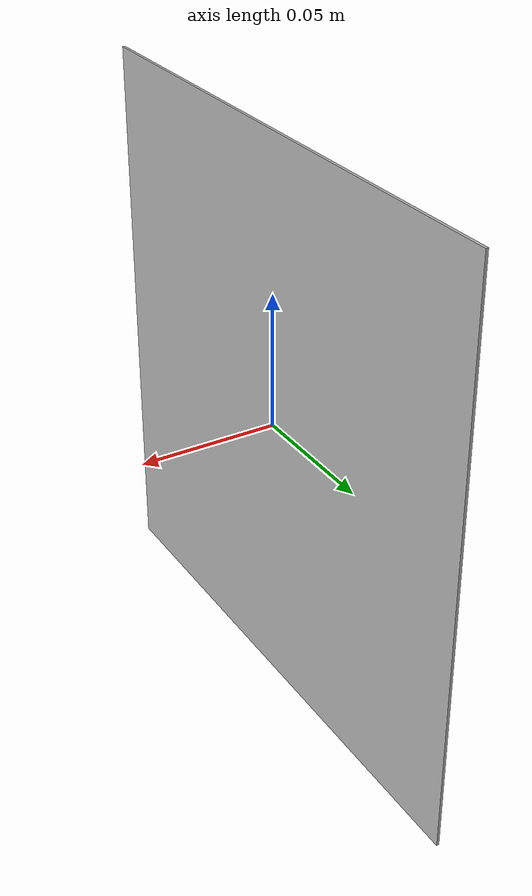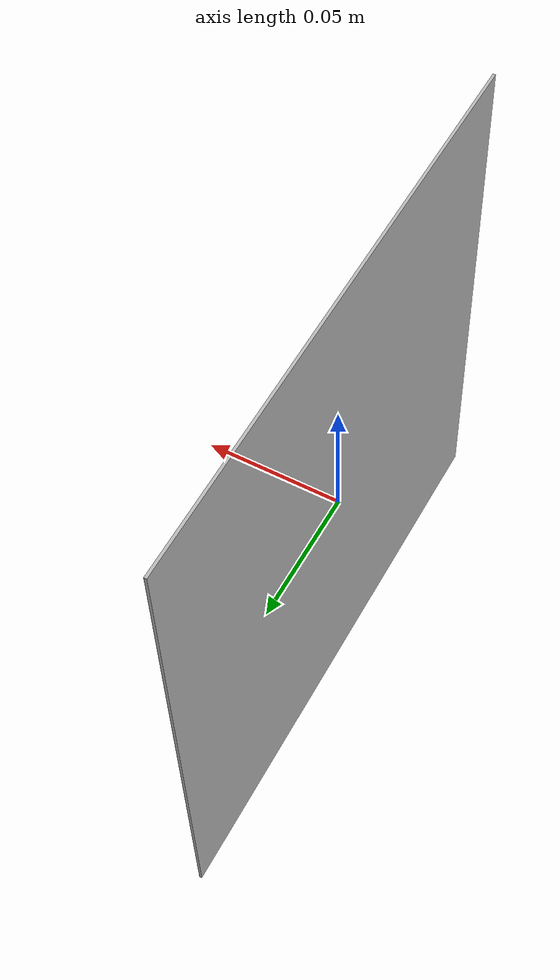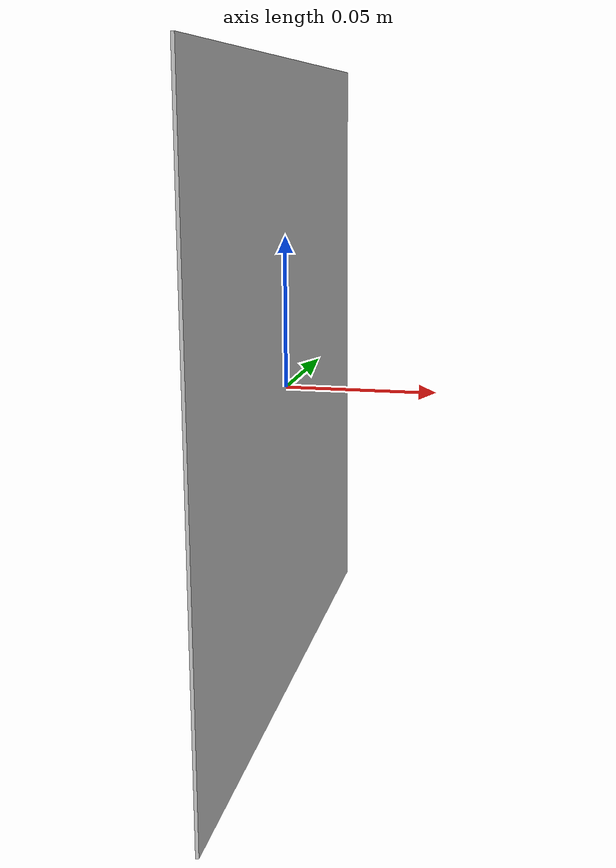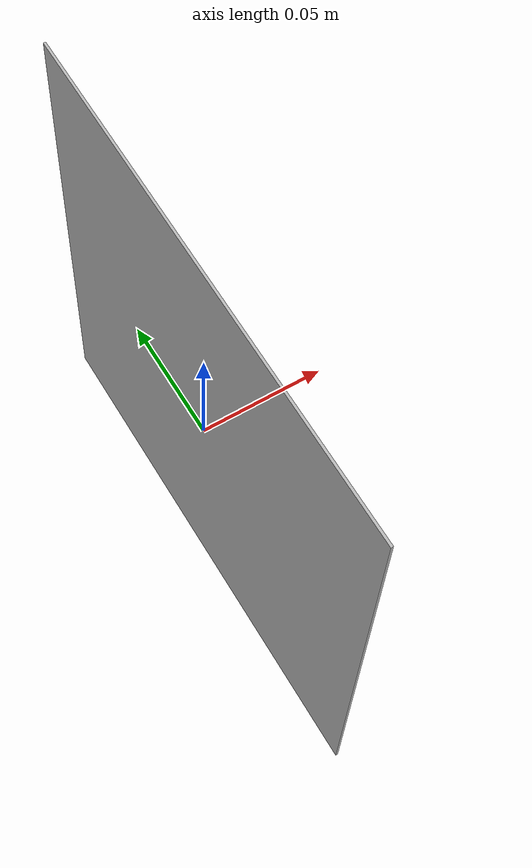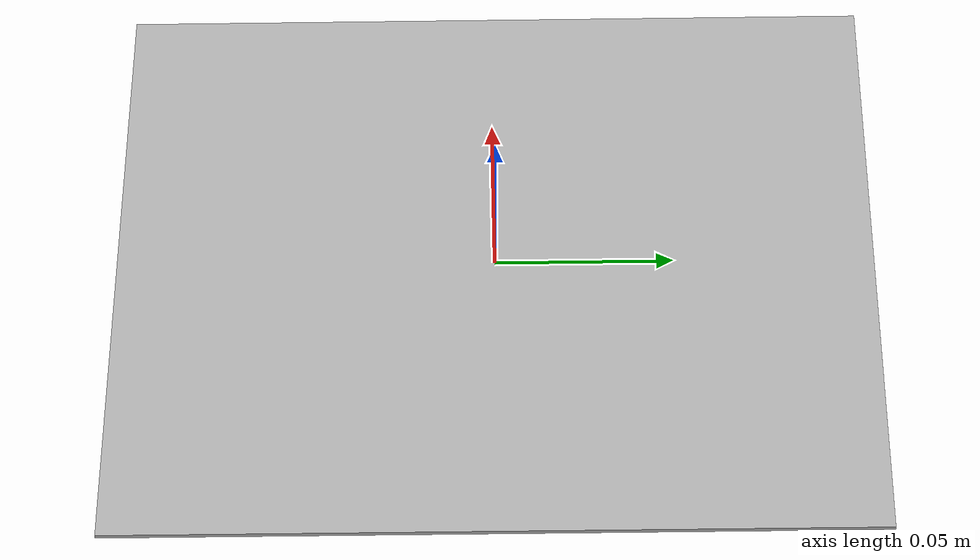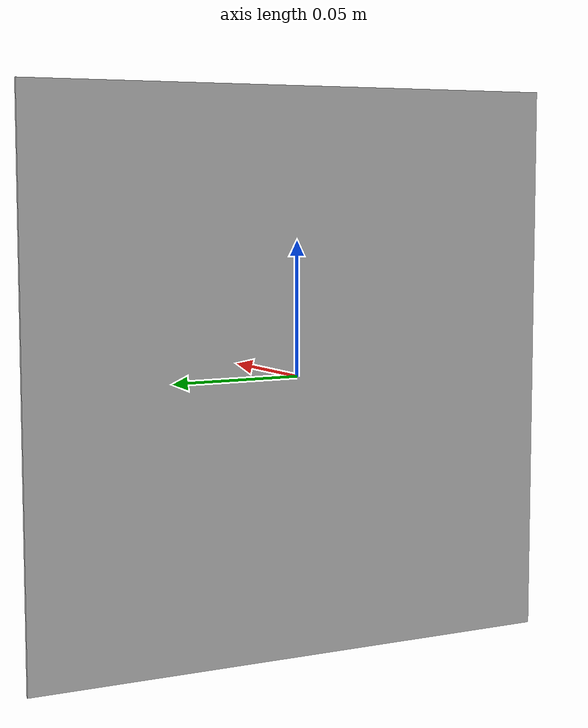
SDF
<?xml version='1.0'?>
<sdf version='1.4'>
  <model name="april_tag_10">
    <static>true</static>
    <pose>0 0 0 -1.5707963267948966 0 0</pose>
    <link name="tag">
      <pose>0 0 0 0 0 0</pose>
      <visual name='visual'>
        <geometry>
          <mesh>
            <uri>
              model://april_tag_10/meshes/april_tag_10.dae
            </uri>
          </mesh>
        </geometry>
      </visual>
    </link>
  </model>
</sdf>
